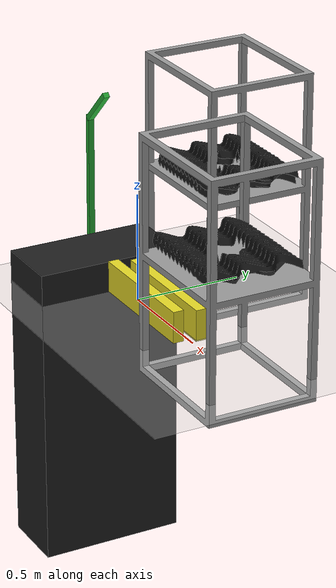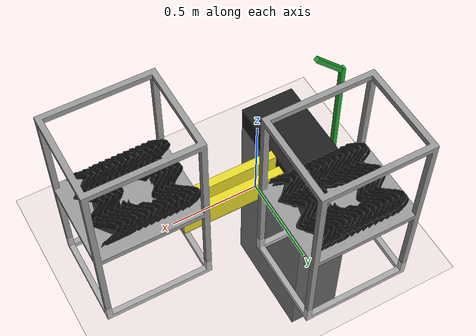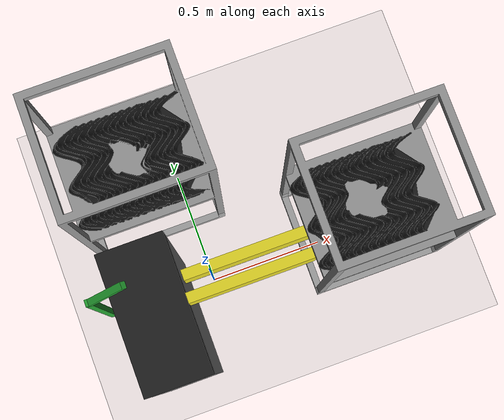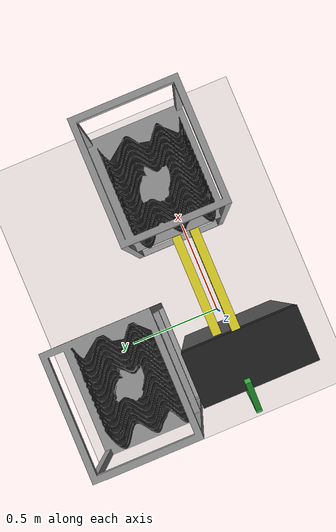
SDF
<sdf version="1.7">
 <world name="default">
  <plugin name="ros_link_attacher_plugin" filename="libgazebo_ros_link_attacher.so"/>
  <light name="sun" type="directional">
   <pose>0 0 10 0 -0 0</pose>
   <diffuse>0.8 0.8 0.8 1</diffuse>
   <specular>0.2 0.2 0.2 1</specular>
   <attenuation>
    <range>1000</range>
    <constant>0.9</constant>
    <linear>0.01</linear>
    <quadratic>0.001</quadratic>
   </attenuation>
   <direction>-0.5 0.1 -0.9</direction>
   <spot><inner_angle>0</inner_angle><outer_angle>0</outer_angle><falloff>0</falloff></spot>
  </light>
  <model name="ground_plane">
   <static>1</static>
   <link name="link">
    <collision name="collision">
     <geometry><plane><normal>0 0 1</normal><size>100 100</size></plane></geometry>
     <surface><friction><ode><mu>100</mu><mu2>50</mu2></ode></friction></surface>
    </collision>
    <visual name="visual">
     <cast_shadows>0</cast_shadows>
     <geometry><plane><normal>0 0 1</normal><size>100 100</size></plane></geometry>
     <material>
      <script><uri>file://media/materials/scripts/gazebo.material</uri><name>Gazebo/Grey</name></script>
     </material>
    </visual>
   </link>
  </model>
  <gravity>0 0 -9.8</gravity>
  <magnetic_field>6e-06 2.3e-05 -4.2e-05</magnetic_field>
  <atmosphere type="adiabatic"/>
  <physics name="default_physics" default="0" type="ode">
   <max_step_size>0.001</max_step_size>
   <real_time_factor>1</real_time_factor>
   <real_time_update_rate>1000</real_time_update_rate>
  </physics>
  <scene><ambient>0.4 0.4 0.4 1</ambient><background>0.7 0.7 0.7 1</background><shadows>1</shadows></scene>
  <audio><device>default</device></audio>
  <spherical_coordinates>
   <surface_model>EARTH_WGS84</surface_model>
   <latitude_deg>0</latitude_deg>
   <longitude_deg>0</longitude_deg>
   <elevation>0</elevation>
   <heading_deg>0</heading_deg>
  </spherical_coordinates>
  <model name="ur3_table">
   <link name="link">
    <inertial>
     <mass>1</mass>
     <inertia>
      <ixx>0.166667</ixx>
      <ixy>0</ixy>
      <ixz>0</ixz>
      <iyy>0.166667</iyy>
      <iyz>0</iyz>
      <izz>0.166667</izz>
     </inertia>
    </inertial>
    <visual name="visual">
     <geometry><box><size>0.320463 0.67312 1.42437</size></box></geometry>
     <material>
      <script><name>Gazebo/Black</name><uri>file://media/materials/scripts/gazebo.material</uri></script>
      <shader type="pixel"/>
     </material>
    </visual>
    <collision name="collision">
     <geometry><box><size>0.320463 0.67312 1.42437</size></box></geometry>
     <surface>
      <friction>
       <ode><mu>1</mu><mu2>1</mu2><fdir1>0 0 0</fdir1><slip1>0</slip1><slip2>0</slip2></ode>
       <torsional>
        <coefficient>1</coefficient>
        <patch_radius>0</patch_radius>
        <surface_radius>0</surface_radius>
        <use_patch_radius>1</use_patch_radius>
        <ode><slip>0</slip></ode>
       </torsional>
      </friction>
      <bounce><restitution_coefficient>0</restitution_coefficient><threshold>1e+06</threshold></bounce>
      <contact>
       <collide_without_contact>0</collide_without_contact>
       <collide_without_contact_bitmask>1</collide_without_contact_bitmask>
       <collide_bitmask>1</collide_bitmask>
       <ode>
        <soft_cfm>0</soft_cfm>
        <soft_erp>0.2</soft_erp>
        <kp>1e+13</kp>
        <kd>1</kd>
        <max_vel>0.01</max_vel>
        <min_depth>0</min_depth>
       </ode>
       <bullet>
        <split_impulse>1</split_impulse>
        <split_impulse_penetration_threshold>-0.01</split_impulse_penetration_threshold>
        <soft_cfm>0</soft_cfm>
        <soft_erp>0.2</soft_erp>
        <kp>1e+13</kp>
        <kd>1</kd>
       </bullet>
      </contact>
     </surface>
    </collision>
   </link>
   <static>1</static>
   <pose>-0.301477 -0.064428 -0.570171 0 -0 0</pose>
  </model>
  <model name="GUIZI1_urdf">
   <link name="base_link">
    <inertial>
     <pose>-0 0 0.54 0 -0 0</pose>
     <mass>16.524</mass>
     <inertia>
      <ixx>1.9176</ixx>
      <ixy>5.5609e-16</ixy>
      <ixz>1.2201e-15</ixz>
      <iyy>2.1228</iyy>
      <iyz>7.2779e-16</iyz>
      <izz>1.3181</izz>
     </inertia>
    </inertial>
    <visual name="base_link_visual">
     <geometry>
      <mesh><scale>1 1 1</scale><uri>/home/ma/sim_ws/src/models/GUIZI1_urdf/meshes/base_link.STL</uri></mesh>
     </geometry>
     <material>
      <script><name>Gazebo/urGrey</name><uri>file://media/materials/scripts/gazebo.material</uri></script>
     </material>
    </visual>
    <collision name="base_link_collision">
     <geometry>
      <mesh><uri>/home/ma/sim_ws/src/models/GUIZI1_urdf/meshes/base_link.STL</uri><scale>0.9 0.9 1</scale></mesh>
     </geometry>
     <surface>
      <friction>
       <ode><mu>1</mu><mu2>1</mu2><fdir1>0 0 0</fdir1><slip1>0</slip1><slip2>0</slip2></ode>
       <torsional>
        <coefficient>1</coefficient>
        <patch_radius>0</patch_radius>
        <surface_radius>0</surface_radius>
        <use_patch_radius>1</use_patch_radius>
        <ode><slip>0</slip></ode>
       </torsional>
      </friction>
      <bounce><restitution_coefficient>0</restitution_coefficient><threshold>1e+06</threshold></bounce>
      <contact>
       <collide_without_contact>0</collide_without_contact>
       <collide_without_contact_bitmask>1</collide_without_contact_bitmask>
       <collide_bitmask>1</collide_bitmask>
       <ode>
        <soft_cfm>0</soft_cfm>
        <soft_erp>0.2</soft_erp>
        <kp>1e+13</kp>
        <kd>1</kd>
        <max_vel>0.01</max_vel>
        <min_depth>0</min_depth>
       </ode>
       <bullet>
        <split_impulse>1</split_impulse>
        <split_impulse_penetration_threshold>-0.01</split_impulse_penetration_threshold>
        <soft_cfm>0</soft_cfm>
        <soft_erp>0.2</soft_erp>
        <kp>1e+13</kp>
        <kd>1</kd>
       </bullet>
      </contact>
     </surface>
    </collision>
   </link>
   <static>1</static>
   <pose>-0.14977 0.532289 -0.107182 0 -0 0</pose>
  </model>
  <model name="camera_holder1">
   <link name="link">
    <inertial>
     <mass>1</mass>
     <inertia>
      <ixx>0.166667</ixx>
      <ixy>0</ixy>
      <ixz>0</ixz>
      <iyy>0.166667</iyy>
      <iyz>0</iyz>
      <izz>0.166667</izz>
     </inertia>
    </inertial>
    <visual name="visual">
     <geometry><box><size>0.024026 0.028174 0.229871</size></box></geometry>
     <material>
      <script><name>Gazebo/Green</name><uri>file://media/materials/scripts/gazebo.material</uri></script>
      <shader type="pixel"><normal_map>__default__</normal_map></shader>
      <ambient>0 1 0 1</ambient>
      <diffuse>0 1 0 1</diffuse>
      <specular>0.1 0.1 0.1 1</specular>
      <emissive>0 0 0 1</emissive>
     </material>
    </visual>
    <collision name="collision">
     <geometry><box><size>0.001 0.001 0.001</size></box></geometry>
     <surface>
      <friction>
       <ode><mu>1</mu><mu2>1</mu2><fdir1>0 0 0</fdir1><slip1>0</slip1><slip2>0</slip2></ode>
       <torsional>
        <coefficient>1</coefficient>
        <patch_radius>0</patch_radius>
        <surface_radius>0</surface_radius>
        <use_patch_radius>1</use_patch_radius>
        <ode><slip>0</slip></ode>
       </torsional>
      </friction>
      <bounce><restitution_coefficient>0</restitution_coefficient><threshold>1e+06</threshold></bounce>
      <contact>
       <collide_without_contact>0</collide_without_contact>
       <collide_without_contact_bitmask>1</collide_without_contact_bitmask>
       <collide_bitmask>1</collide_bitmask>
       <ode>
        <soft_cfm>0</soft_cfm>
        <soft_erp>0.2</soft_erp>
        <kp>1e+13</kp>
        <kd>1</kd>
        <max_vel>0.01</max_vel>
        <min_depth>0</min_depth>
       </ode>
       <bullet>
        <split_impulse>1</split_impulse>
        <split_impulse_penetration_threshold>-0.01</split_impulse_penetration_threshold>
        <soft_cfm>0</soft_cfm>
        <soft_erp>0.2</soft_erp>
        <kp>1e+13</kp>
        <kd>1</kd>
       </bullet>
      </contact>
     </surface>
    </collision>
   </link>
   <static>1</static>
   <pose>-0.394983 0.011624 0.774927 0 0.793407 0</pose>
  </model>
  <model name="camera_holder2">
   <link name="link">
    <inertial>
     <mass>1</mass>
     <inertia>
      <ixx>0.166667</ixx>
      <ixy>0</ixy>
      <ixz>0</ixz>
      <iyy>0.166667</iyy>
      <iyz>0</iyz>
      <izz>0.166667</izz>
     </inertia>
    </inertial>
    <visual name="visual">
     <geometry><box><size>0.024026 0.028174 0.719986</size></box></geometry>
     <material>
      <script><name>Gazebo/Green</name><uri>file://media/materials/scripts/gazebo.material</uri></script>
      <shader type="pixel"><normal_map>__default__</normal_map></shader>
      <ambient>0 1 0 1</ambient>
      <diffuse>0 1 0 1</diffuse>
      <specular>0.1 0.1 0.1 1</specular>
      <emissive>0 0 0 1</emissive>
     </material>
    </visual>
    <collision name="collision">
     <geometry><box><size>0.001 0.001 0.001</size></box></geometry>
     <surface>
      <friction>
       <ode><mu>1</mu><mu2>1</mu2><fdir1>0 0 0</fdir1><slip1>0</slip1><slip2>0</slip2></ode>
       <torsional>
        <coefficient>1</coefficient>
        <patch_radius>0</patch_radius>
        <surface_radius>0</surface_radius>
        <use_patch_radius>1</use_patch_radius>
        <ode><slip>0</slip></ode>
       </torsional>
      </friction>
      <bounce><restitution_coefficient>0</restitution_coefficient><threshold>1e+06</threshold></bounce>
      <contact>
       <collide_without_contact>0</collide_without_contact>
       <collide_without_contact_bitmask>1</collide_without_contact_bitmask>
       <collide_bitmask>1</collide_bitmask>
       <ode>
        <soft_cfm>0</soft_cfm>
        <soft_erp>0.2</soft_erp>
        <kp>1e+13</kp>
        <kd>1</kd>
        <max_vel>0.01</max_vel>
        <min_depth>0</min_depth>
       </ode>
       <bullet>
        <split_impulse>1</split_impulse>
        <split_impulse_penetration_threshold>-0.01</split_impulse_penetration_threshold>
        <soft_cfm>0</soft_cfm>
        <soft_erp>0.2</soft_erp>
        <kp>1e+13</kp>
        <kd>1</kd>
       </bullet>
      </contact>
     </surface>
    </collision>
   </link>
   <static>1</static>
   <pose>-0.478369 0.012551 0.352084 0 0.008309 0</pose>
  </model>
  <model name="GUIZI1_urdf_clone">
   <link name="base_link">
    <inertial>
     <pose>-0 0 0.54 0 -0 0</pose>
     <mass>16.524</mass>
     <inertia>
      <ixx>1.9176</ixx>
      <ixy>5.5609e-16</ixy>
      <ixz>1.2201e-15</ixz>
      <iyy>2.1228</iyy>
      <iyz>7.2779e-16</iyz>
      <izz>1.3181</izz>
     </inertia>
    </inertial>
    <visual name="base_link_visual">
     <geometry>
      <mesh><scale>1 1 1</scale><uri>/home/ma/sim_ws/src/models/GUIZI1_urdf/meshes/base_link.STL</uri></mesh>
     </geometry>
     <material>
      <script><name>Gazebo/urGrey</name><uri>file://media/materials/scripts/gazebo.material</uri></script>
     </material>
    </visual>
    <collision name="base_link_collision">
     <geometry>
      <mesh><uri>/home/ma/sim_ws/src/models/GUIZI1_urdf/meshes/base_link.STL</uri><scale>0.8 0.8 1</scale></mesh>
     </geometry>
     <surface>
      <friction>
       <ode><mu>1</mu><mu2>1</mu2><fdir1>0 0 0</fdir1><slip1>0</slip1><slip2>0</slip2></ode>
       <torsional>
        <coefficient>1</coefficient>
        <patch_radius>0</patch_radius>
        <surface_radius>0</surface_radius>
        <use_patch_radius>1</use_patch_radius>
        <ode><slip>0</slip></ode>
       </torsional>
      </friction>
      <bounce><restitution_coefficient>0</restitution_coefficient><threshold>1e+06</threshold></bounce>
      <contact>
       <collide_without_contact>0</collide_without_contact>
       <collide_without_contact_bitmask>1</collide_without_contact_bitmask>
       <collide_bitmask>1</collide_bitmask>
       <ode>
        <soft_cfm>0</soft_cfm>
        <soft_erp>0.2</soft_erp>
        <kp>1e+13</kp>
        <kd>1</kd>
        <max_vel>0.01</max_vel>
        <min_depth>0</min_depth>
       </ode>
       <bullet>
        <split_impulse>1</split_impulse>
        <split_impulse_penetration_threshold>-0.01</split_impulse_penetration_threshold>
        <soft_cfm>0</soft_cfm>
        <soft_erp>0.2</soft_erp>
        <kp>1e+13</kp>
        <kd>1</kd>
       </bullet>
      </contact>
     </surface>
    </collision>
   </link>
   <static>1</static>
   <pose>0.727214 0.035979 -0.107182 0 -0 0</pose>
  </model>
  <model name="Erpan_urdf">
   <link name="base_link">
    <inertial>
     <pose>0.27109 0.77215 0.040176 0 -0 0</pose>
     <mass>0.1</mass>
     <inertia><ixx>0.1</ixx><ixy>0.1</ixy><ixz>0.1</ixz><iyy>0.1</iyy><iyz>0.1</iyz><izz>0.1</izz></inertia>
    </inertial>
    <visual name="base_link_visual">
     <geometry><mesh><scale>1 1 1</scale><uri>model://Erpan_urdf/meshes/base_link.STL</uri></mesh></geometry>
     <material>
      <ambient>0.1 0.1 0.1 1</ambient>
      <diffuse>0.1 0.1 0.1 1</diffuse>
      <specular>0 0 0 1</specular>
      <emissive>0 0 0 1</emissive>
     </material>
    </visual>
    <collision name="base_link_collision">
     <geometry><mesh><uri>model://Erpan_urdf/meshes/base_link.STL</uri><scale>1 1 1</scale></mesh></geometry>
     <surface>
      <friction>
       <ode><mu>1</mu><mu2>1</mu2><fdir1>0 0 0</fdir1><slip1>0</slip1><slip2>0</slip2></ode>
       <torsional>
        <coefficient>1</coefficient>
        <patch_radius>0</patch_radius>
        <surface_radius>0</surface_radius>
        <use_patch_radius>1</use_patch_radius>
        <ode><slip>0</slip></ode>
       </torsional>
      </friction>
      <bounce><restitution_coefficient>0</restitution_coefficient><threshold>1e+06</threshold></bounce>
      <contact>
       <collide_without_contact>0</collide_without_contact>
       <collide_without_contact_bitmask>1</collide_without_contact_bitmask>
       <collide_bitmask>1</collide_bitmask>
       <ode>
        <soft_cfm>0</soft_cfm>
        <soft_erp>0.2</soft_erp>
        <kp>1e+13</kp>
        <kd>1</kd>
        <max_vel>0.01</max_vel>
        <min_depth>0</min_depth>
       </ode>
       <bullet>
        <split_impulse>1</split_impulse>
        <split_impulse_penetration_threshold>-0.01</split_impulse_penetration_threshold>
        <soft_cfm>0</soft_cfm>
        <soft_erp>0.2</soft_erp>
        <kp>1e+13</kp>
        <kd>1</kd>
       </bullet>
      </contact>
     </surface>
    </collision>
   </link>
   <static>1</static>
   <pose>-0.375032 0.310766 0.445694 0 -0 0</pose>
  </model>
  <model name="Erpan_urdf_clone">
   <link name="base_link">
    <inertial>
     <pose>0.27109 0.77215 0.040176 0 -0 0</pose>
     <mass>0.1</mass>
     <inertia><ixx>0.1</ixx><ixy>0.1</ixy><ixz>0.1</ixz><iyy>0.1</iyy><iyz>0.1</iyz><izz>0.1</izz></inertia>
    </inertial>
    <visual name="base_link_visual">
     <geometry><mesh><scale>1 1 1</scale><uri>model://Erpan_urdf/meshes/base_link.STL</uri></mesh></geometry>
     <material>
      <ambient>0.1 0.1 0.1 1</ambient>
      <diffuse>0.1 0.1 0.1 1</diffuse>
      <specular>0 0 0 1</specular>
      <emissive>0 0 0 1</emissive>
     </material>
    </visual>
    <collision name="base_link_collision">
     <geometry><mesh><uri>model://Erpan_urdf/meshes/base_link.STL</uri><scale>1 1 1</scale></mesh></geometry>
     <surface>
      <friction>
       <ode><mu>1</mu><mu2>1</mu2><fdir1>0 0 0</fdir1><slip1>0</slip1><slip2>0</slip2></ode>
       <torsional>
        <coefficient>1</coefficient>
        <patch_radius>0</patch_radius>
        <surface_radius>0</surface_radius>
        <use_patch_radius>1</use_patch_radius>
        <ode><slip>0</slip></ode>
       </torsional>
      </friction>
      <bounce><restitution_coefficient>0</restitution_coefficient><threshold>1e+06</threshold></bounce>
      <contact>
       <collide_without_contact>0</collide_without_contact>
       <collide_without_contact_bitmask>1</collide_without_contact_bitmask>
       <collide_bitmask>1</collide_bitmask>
       <ode>
        <soft_cfm>0</soft_cfm>
        <soft_erp>0.2</soft_erp>
        <kp>1e+13</kp>
        <kd>1</kd>
        <max_vel>0.01</max_vel>
        <min_depth>0</min_depth>
       </ode>
       <bullet>
        <split_impulse>1</split_impulse>
        <split_impulse_penetration_threshold>-0.01</split_impulse_penetration_threshold>
        <soft_cfm>0</soft_cfm>
        <soft_erp>0.2</soft_erp>
        <kp>1e+13</kp>
        <kd>1</kd>
       </bullet>
      </contact>
     </surface>
    </collision>
   </link>
   <static>1</static>
   <pose>-0.354018 0.310348 0.484714 0 -0 0</pose>
  </model>
  <model name="Erpan_urdf_clone_clone">
   <link name="base_link">
    <inertial>
     <pose>0.27109 0.77215 0.040176 0 -0 0</pose>
     <mass>0.1</mass>
     <inertia><ixx>0.1</ixx><ixy>0.1</ixy><ixz>0.1</ixz><iyy>0.1</iyy><iyz>0.1</iyz><izz>0.1</izz></inertia>
    </inertial>
    <visual name="base_link_visual">
     <geometry><mesh><scale>1 1 1</scale><uri>model://Erpan_urdf/meshes/base_link.STL</uri></mesh></geometry>
     <material>
      <ambient>0.1 0.1 0.1 1</ambient>
      <diffuse>0.1 0.1 0.1 1</diffuse>
      <specular>0 0 0 1</specular>
      <emissive>0 0 0 1</emissive>
     </material>
    </visual>
    <collision name="base_link_collision">
     <geometry><mesh><uri>model://Erpan_urdf/meshes/base_link.STL</uri><scale>1 1 1</scale></mesh></geometry>
     <surface>
      <friction>
       <ode><mu>1</mu><mu2>1</mu2><fdir1>0 0 0</fdir1><slip1>0</slip1><slip2>0</slip2></ode>
       <torsional>
        <coefficient>1</coefficient>
        <patch_radius>0</patch_radius>
        <surface_radius>0</surface_radius>
        <use_patch_radius>1</use_patch_radius>
        <ode><slip>0</slip></ode>
       </torsional>
      </friction>
      <bounce><restitution_coefficient>0</restitution_coefficient><threshold>1e+06</threshold></bounce>
      <contact>
       <collide_without_contact>0</collide_without_contact>
       <collide_without_contact_bitmask>1</collide_without_contact_bitmask>
       <collide_bitmask>1</collide_bitmask>
       <ode>
        <soft_cfm>0</soft_cfm>
        <soft_erp>0.2</soft_erp>
        <kp>1e+13</kp>
        <kd>1</kd>
        <max_vel>0.01</max_vel>
        <min_depth>0</min_depth>
       </ode>
       <bullet>
        <split_impulse>1</split_impulse>
        <split_impulse_penetration_threshold>-0.01</split_impulse_penetration_threshold>
        <soft_cfm>0</soft_cfm>
        <soft_erp>0.2</soft_erp>
        <kp>1e+13</kp>
        <kd>1</kd>
       </bullet>
      </contact>
     </surface>
    </collision>
   </link>
   <static>1</static>
   <pose>0.491967 -0.182254 0.484714 0 -0 0</pose>
  </model>
  <model name="unit_box_0">
   <link name="link">
    <inertial>
     <mass>1</mass>
     <inertia>
      <ixx>0.166667</ixx>
      <ixy>0</ixy>
      <ixz>0</ixz>
      <iyy>0.166667</iyy>
      <iyz>0</iyz>
      <izz>0.166667</izz>
     </inertia>
    </inertial>
    <visual name="visual">
     <geometry><box><size>0.601085 0.050043 0.145746</size></box></geometry>
     <material>
      <script><name>Gazebo/Yellow</name><uri>file://media/materials/scripts/gazebo.material</uri></script>
      <shader type="vertex"><normal_map>__default__</normal_map></shader>
      <ambient>1 1 0 1</ambient>
      <diffuse>1 1 0 1</diffuse>
      <emissive>0 0 0 1</emissive>
     </material>
    </visual>
    <collision name="collision">
     <geometry><box><size>0.601085 0.050043 0.145746</size></box></geometry>
     <surface>
      <friction>
       <ode><mu>1</mu><mu2>1</mu2><fdir1>0 0 0</fdir1><slip1>0</slip1><slip2>0</slip2></ode>
       <torsional>
        <coefficient>1</coefficient>
        <patch_radius>0</patch_radius>
        <surface_radius>0</surface_radius>
        <use_patch_radius>1</use_patch_radius>
        <ode><slip>0</slip></ode>
       </torsional>
      </friction>
      <bounce><restitution_coefficient>0</restitution_coefficient><threshold>1e+06</threshold></bounce>
      <contact>
       <collide_without_contact>0</collide_without_contact>
       <collide_without_contact_bitmask>1</collide_without_contact_bitmask>
       <collide_bitmask>1</collide_bitmask>
       <ode>
        <soft_cfm>0</soft_cfm>
        <soft_erp>0.2</soft_erp>
        <kp>1e+13</kp>
        <kd>1</kd>
        <max_vel>0.01</max_vel>
        <min_depth>0</min_depth>
       </ode>
       <bullet>
        <split_impulse>1</split_impulse>
        <split_impulse_penetration_threshold>-0.01</split_impulse_penetration_threshold>
        <soft_cfm>0</soft_cfm>
        <soft_erp>0.2</soft_erp>
        <kp>1e+13</kp>
        <kd>1</kd>
       </bullet>
      </contact>
     </surface>
    </collision>
   </link>
   <static>1</static>
   <pose>0.161061 -0.049482 0.073126 0 -0 0</pose>
  </model>
  <model name="unit_box_0_clone">
   <link name="link">
    <inertial>
     <mass>1</mass>
     <inertia>
      <ixx>0.166667</ixx>
      <ixy>0</ixy>
      <ixz>0</ixz>
      <iyy>0.166667</iyy>
      <iyz>0</iyz>
      <izz>0.166667</izz>
     </inertia>
    </inertial>
    <visual name="visual">
     <geometry><box><size>0.601085 0.050043 0.145746</size></box></geometry>
     <material>
      <script><name>Gazebo/Yellow</name><uri>file://media/materials/scripts/gazebo.material</uri></script>
      <shader type="vertex"><normal_map>__default__</normal_map></shader>
      <ambient>1 1 0 1</ambient>
      <diffuse>1 1 0 1</diffuse>
      <emissive>0 0 0 1</emissive>
     </material>
    </visual>
    <collision name="collision">
     <geometry><box><size>0.601085 0.050043 0.145746</size></box></geometry>
     <surface>
      <friction>
       <ode><mu>1</mu><mu2>1</mu2><fdir1>0 0 0</fdir1><slip1>0</slip1><slip2>0</slip2></ode>
       <torsional>
        <coefficient>1</coefficient>
        <patch_radius>0</patch_radius>
        <surface_radius>0</surface_radius>
        <use_patch_radius>1</use_patch_radius>
        <ode><slip>0</slip></ode>
       </torsional>
      </friction>
      <bounce><restitution_coefficient>0</restitution_coefficient><threshold>1e+06</threshold></bounce>
      <contact>
       <collide_without_contact>0</collide_without_contact>
       <collide_without_contact_bitmask>1</collide_without_contact_bitmask>
       <collide_bitmask>1</collide_bitmask>
       <ode>
        <soft_cfm>0</soft_cfm>
        <soft_erp>0.2</soft_erp>
        <kp>1e+13</kp>
        <kd>1</kd>
        <max_vel>0.01</max_vel>
        <min_depth>0</min_depth>
       </ode>
       <bullet>
        <split_impulse>1</split_impulse>
        <split_impulse_penetration_threshold>-0.01</split_impulse_penetration_threshold>
        <soft_cfm>0</soft_cfm>
        <soft_erp>0.2</soft_erp>
        <kp>1e+13</kp>
        <kd>1</kd>
       </bullet>
      </contact>
     </surface>
    </collision>
   </link>
   <static>1</static>
   <pose>0.174665 0.053972 0.064114 0 -0 0</pose>
  </model>
 </world>
</sdf>
